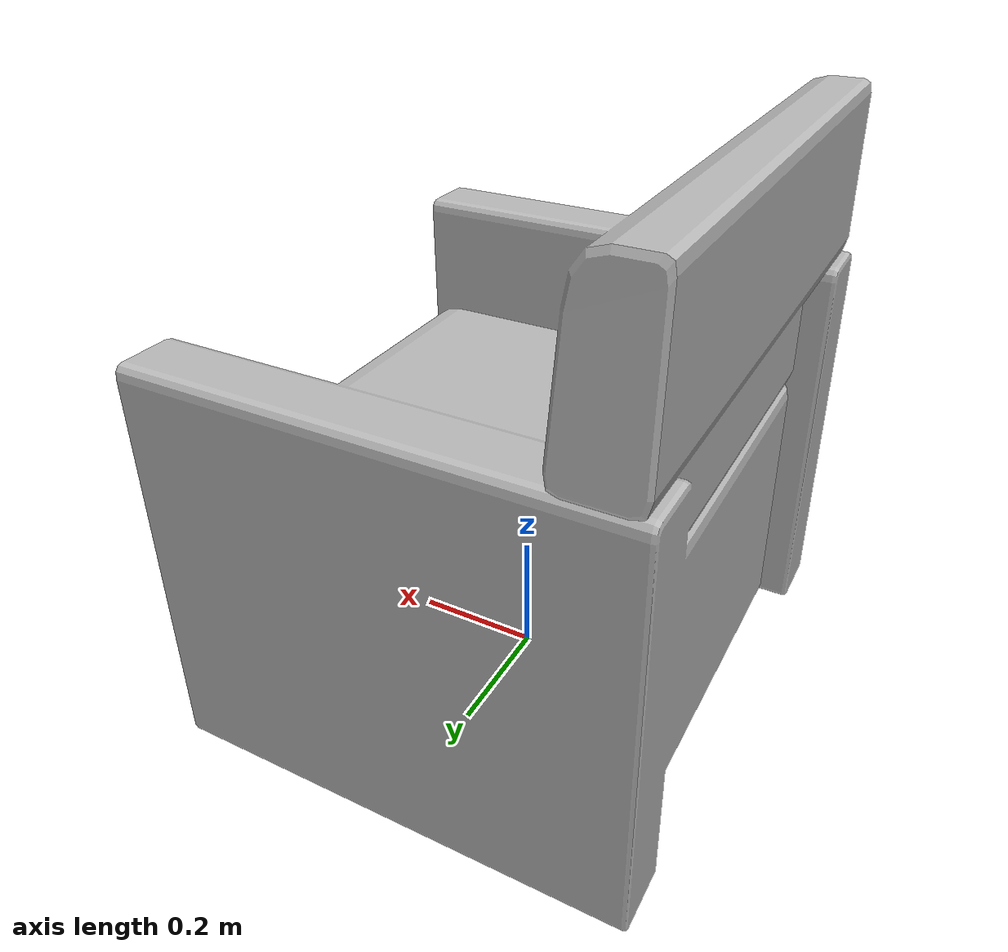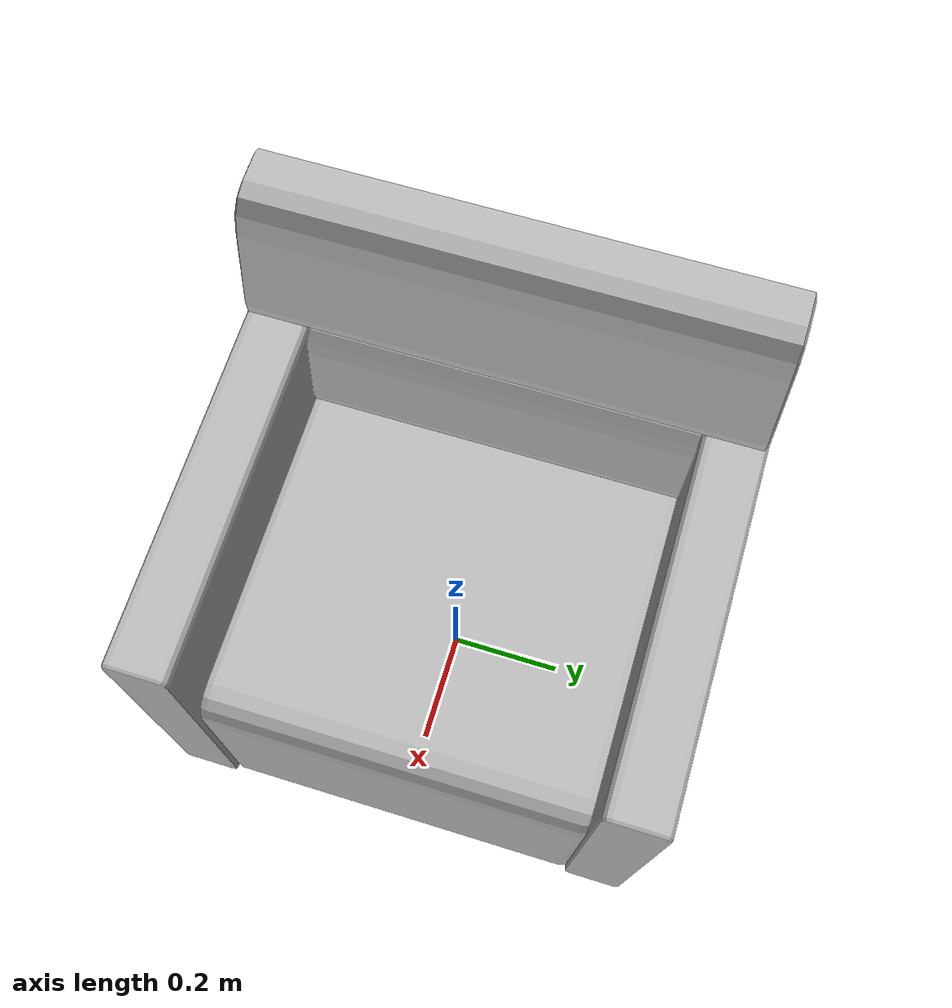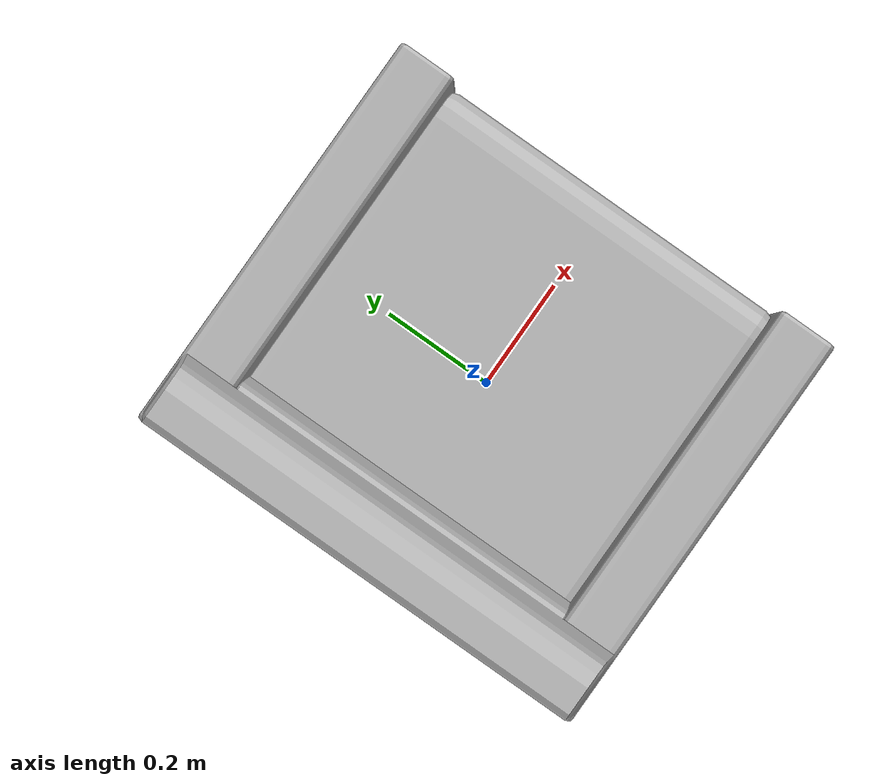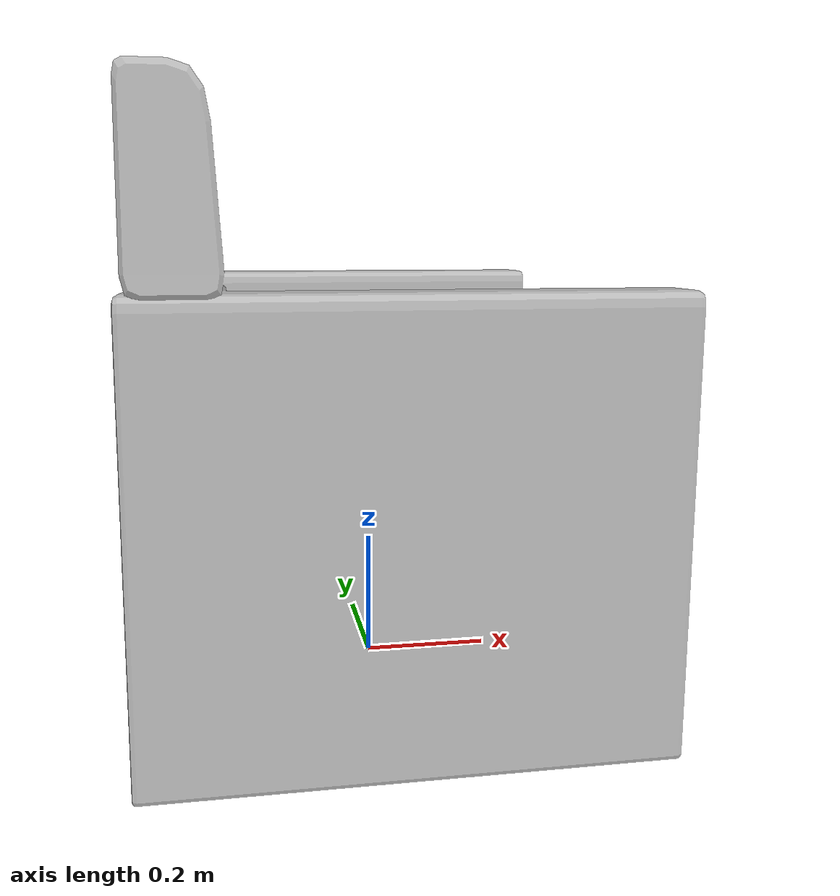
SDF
<?xml version="1.0" ?>
<sdf version="1.6">
  <model name="aws_robomaker_residential_SofaB_01">
    <link name="link">
      <inertial>
        <mass>72.5</mass>
      </inertial>
      <collision name="collision">
        <geometry>
          <mesh>
            <uri>model://aws_robomaker_residential_SofaB_01/meshes/aws_SofaB_01_collision.DAE</uri>
            <scale>1 1 1</scale>
          </mesh>
        </geometry>
      </collision>
      <visual name="visual">
        <geometry>
          <mesh>
            <uri>model://aws_robomaker_residential_SofaB_01/meshes/aws_SofaB_01_visual.DAE</uri>
          </mesh>
        </geometry>
        <meta>
          <layer> 1 </layer>
        </meta>
      </visual>
    </link>
  </model>
</sdf>
